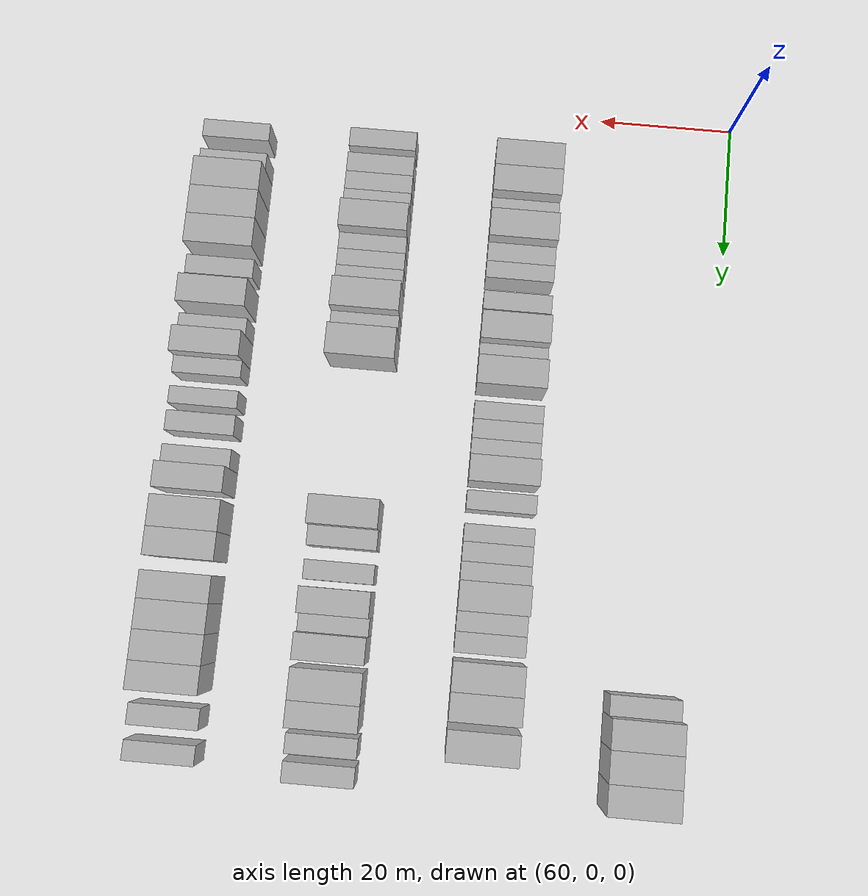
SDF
<sdf version="1.6">
 <world name="default">
  <model name="building_510">
   <static>1</static>
   <pose>69.0000 87.7155 0 0.000000 0.000000 0.000000</pose>
   <link name="link">
    <pose>0 0 3.00 0 0 0</pose>
    <collision name="collision"><geometry><box><size>10.0000 2.8923 6.0000</size></box></geometry></collision>
    <visual name="visual">
     <cast_shadows>0</cast_shadows>
     <geometry><box><size>10.0000 2.8923 6.0000</size></box></geometry>
     <material>
      <script>
       <uri>model://HANNAS_wall/materials/scripts</uri>
       <uri>model://HANNAS_wall/materials/textures</uri>
       <name>vrc/HANNAS_wall</name>
      </script>
     </material>
    </visual>
   </link>
  </model>
  <model name="building_511">
   <static>1</static>
   <pose>69.0000 91.2307 0 0.000000 0.000000 0.000000</pose>
   <link name="link">
    <pose>0 0 4.50 0 0 0</pose>
    <collision name="collision"><geometry><box><size>10.0000 4.1381 9.0000</size></box></geometry></collision>
    <visual name="visual">
     <cast_shadows>0</cast_shadows>
     <geometry><box><size>10.0000 4.1381 9.0000</size></box></geometry>
     <material>
      <script>
       <uri>model://HANNAS_wall/materials/scripts</uri>
       <uri>model://HANNAS_wall/materials/textures</uri>
       <name>vrc/HANNAS_wall</name>
      </script>
     </material>
    </visual>
   </link>
  </model>
  <model name="building_512">
   <static>1</static>
   <pose>69.0000 95.4984 0 0.000000 0.000000 0.000000</pose>
   <link name="link">
    <pose>0 0 4.50 0 0 0</pose>
    <collision name="collision"><geometry><box><size>10.0000 4.3973 9.0000</size></box></geometry></collision>
    <visual name="visual">
     <cast_shadows>0</cast_shadows>
     <geometry><box><size>10.0000 4.3973 9.0000</size></box></geometry>
     <material>
      <script>
       <uri>model://HANNAS_wall/materials/scripts</uri>
       <uri>model://HANNAS_wall/materials/textures</uri>
       <name>vrc/HANNAS_wall</name>
      </script>
     </material>
    </visual>
   </link>
  </model>
  <model name="building_513">
   <static>1</static>
   <pose>69.0000 99.8009 0 0.000000 0.000000 0.000000</pose>
   <link name="link">
    <pose>0 0 4.50 0 0 0</pose>
    <collision name="collision"><geometry><box><size>10.0000 4.2077 9.0000</size></box></geometry></collision>
    <visual name="visual">
     <cast_shadows>0</cast_shadows>
     <geometry><box><size>10.0000 4.2077 9.0000</size></box></geometry>
     <material>
      <script>
       <uri>model://HANNAS_wall/materials/scripts</uri>
       <uri>model://HANNAS_wall/materials/textures</uri>
       <name>vrc/HANNAS_wall</name>
      </script>
     </material>
    </visual>
   </link>
  </model>
  <model name="building_676">
   <static>1</static>
   <pose>91.0000 10.2411 0 0.000000 0.000000 0.000000</pose>
   <link name="link">
    <pose>0 0 4.50 0 0 0</pose>
    <collision name="collision"><geometry><box><size>10.0000 3.9583 9.0000</size></box></geometry></collision>
    <visual name="visual">
     <cast_shadows>0</cast_shadows>
     <geometry><box><size>10.0000 3.9583 9.0000</size></box></geometry>
     <material>
      <script>
       <uri>model://HANNAS_wall/materials/scripts</uri>
       <uri>model://HANNAS_wall/materials/textures</uri>
       <name>vrc/HANNAS_wall</name>
      </script>
     </material>
    </visual>
   </link>
  </model>
  <model name="building_677">
   <static>1</static>
   <pose>91.0000 14.2060 0 0.000000 0.000000 0.000000</pose>
   <link name="link">
    <pose>0 0 4.50 0 0 0</pose>
    <collision name="collision"><geometry><box><size>10.0000 3.9715 9.0000</size></box></geometry></collision>
    <visual name="visual">
     <cast_shadows>0</cast_shadows>
     <geometry><box><size>10.0000 3.9715 9.0000</size></box></geometry>
     <material>
      <script>
       <uri>model://HANNAS_wall/materials/scripts</uri>
       <uri>model://HANNAS_wall/materials/textures</uri>
       <name>vrc/HANNAS_wall</name>
      </script>
     </material>
    </visual>
   </link>
  </model>
  <model name="building_678">
   <static>1</static>
   <pose>91.0000 17.5543 0 0.000000 0.000000 0.000000</pose>
   <link name="link">
    <pose>0 0 3.00 0 0 0</pose>
    <collision name="collision"><geometry><box><size>10.0000 2.7252 6.0000</size></box></geometry></collision>
    <visual name="visual">
     <cast_shadows>0</cast_shadows>
     <geometry><box><size>10.0000 2.7252 6.0000</size></box></geometry>
     <material>
      <script>
       <uri>model://HANNAS_wall/materials/scripts</uri>
       <uri>model://HANNAS_wall/materials/textures</uri>
       <name>vrc/HANNAS_wall</name>
      </script>
     </material>
    </visual>
   </link>
  </model>
  <model name="building_679">
   <static>1</static>
   <pose>91.0000 21.0006 0 0.000000 0.000000 0.000000</pose>
   <link name="link">
    <pose>0 0 4.50 0 0 0</pose>
    <collision name="collision"><geometry><box><size>10.0000 4.1676 9.0000</size></box></geometry></collision>
    <visual name="visual">
     <cast_shadows>0</cast_shadows>
     <geometry><box><size>10.0000 4.1676 9.0000</size></box></geometry>
     <material>
      <script>
       <uri>model://HANNAS_wall/materials/scripts</uri>
       <uri>model://HANNAS_wall/materials/textures</uri>
       <name>vrc/HANNAS_wall</name>
      </script>
     </material>
    </visual>
   </link>
  </model>
  <model name="building_680">
   <static>1</static>
   <pose>91.0000 24.4971 0 0.000000 0.000000 0.000000</pose>
   <link name="link">
    <pose>0 0 3.00 0 0 0</pose>
    <collision name="collision"><geometry><box><size>10.0000 2.8254 6.0000</size></box></geometry></collision>
    <visual name="visual">
     <cast_shadows>0</cast_shadows>
     <geometry><box><size>10.0000 2.8254 6.0000</size></box></geometry>
     <material>
      <script>
       <uri>model://HANNAS_wall/materials/scripts</uri>
       <uri>model://HANNAS_wall/materials/textures</uri>
       <name>vrc/HANNAS_wall</name>
      </script>
     </material>
    </visual>
   </link>
  </model>
  <model name="building_681">
   <static>1</static>
   <pose>91.0000 27.1768 0 0.000000 0.000000 0.000000</pose>
   <link name="link">
    <pose>0 0 3.00 0 0 0</pose>
    <collision name="collision"><geometry><box><size>10.0000 2.5339 6.0000</size></box></geometry></collision>
    <visual name="visual">
     <cast_shadows>0</cast_shadows>
     <geometry><box><size>10.0000 2.5339 6.0000</size></box></geometry>
     <material>
      <script>
       <uri>model://HANNAS_wall/materials/scripts</uri>
       <uri>model://HANNAS_wall/materials/textures</uri>
       <name>vrc/HANNAS_wall</name>
      </script>
     </material>
    </visual>
   </link>
  </model>
  <model name="building_682">
   <static>1</static>
   <pose>91.0000 31.8355 0 0.000000 0.000000 0.000000</pose>
   <link name="link">
    <pose>0 0 3.00 0 0 0</pose>
    <collision name="collision"><geometry><box><size>10.0000 2.7835 6.0000</size></box></geometry></collision>
    <visual name="visual">
     <cast_shadows>0</cast_shadows>
     <geometry><box><size>10.0000 2.7835 6.0000</size></box></geometry>
     <material>
      <script>
       <uri>model://HANNAS_wall/materials/scripts</uri>
       <uri>model://HANNAS_wall/materials/textures</uri>
       <name>vrc/HANNAS_wall</name>
      </script>
     </material>
    </visual>
   </link>
  </model>
  <model name="building_683">
   <static>1</static>
   <pose>91.0000 36.2759 0 0.000000 0.000000 0.000000</pose>
   <link name="link">
    <pose>0 0 4.50 0 0 0</pose>
    <collision name="collision"><geometry><box><size>10.0000 4.0973 9.0000</size></box></geometry></collision>
    <visual name="visual">
     <cast_shadows>0</cast_shadows>
     <geometry><box><size>10.0000 4.0973 9.0000</size></box></geometry>
     <material>
      <script>
       <uri>model://HANNAS_wall/materials/scripts</uri>
       <uri>model://HANNAS_wall/materials/textures</uri>
       <name>vrc/HANNAS_wall</name>
      </script>
     </material>
    </visual>
   </link>
  </model>
  <model name="building_684">
   <static>1</static>
   <pose>91.0000 39.5255 0 0.000000 0.000000 0.000000</pose>
   <link name="link">
    <pose>0 0 3.00 0 0 0</pose>
    <collision name="collision"><geometry><box><size>10.0000 2.4019 6.0000</size></box></geometry></collision>
    <visual name="visual">
     <cast_shadows>0</cast_shadows>
     <geometry><box><size>10.0000 2.4019 6.0000</size></box></geometry>
     <material>
      <script>
       <uri>model://HANNAS_wall/materials/scripts</uri>
       <uri>model://HANNAS_wall/materials/textures</uri>
       <name>vrc/HANNAS_wall</name>
      </script>
     </material>
    </visual>
   </link>
  </model>
  <model name="building_685">
   <static>1</static>
   <pose>91.0000 42.8155 0 0.000000 0.000000 0.000000</pose>
   <link name="link">
    <pose>0 0 4.50 0 0 0</pose>
    <collision name="collision"><geometry><box><size>10.0000 4.1782 9.0000</size></box></geometry></collision>
    <visual name="visual">
     <cast_shadows>0</cast_shadows>
     <geometry><box><size>10.0000 4.1782 9.0000</size></box></geometry>
     <material>
      <script>
       <uri>model://HANNAS_wall/materials/scripts</uri>
       <uri>model://HANNAS_wall/materials/textures</uri>
       <name>vrc/HANNAS_wall</name>
      </script>
     </material>
    </visual>
   </link>
  </model>
  <model name="building_686">
   <static>1</static>
   <pose>91.0000 48.2019 0 0.000000 0.000000 0.000000</pose>
   <link name="link">
    <pose>0 0 3.00 0 0 0</pose>
    <collision name="collision"><geometry><box><size>10.0000 2.5945 6.0000</size></box></geometry></collision>
    <visual name="visual">
     <cast_shadows>0</cast_shadows>
     <geometry><box><size>10.0000 2.5945 6.0000</size></box></geometry>
     <material>
      <script>
       <uri>model://HANNAS_wall/materials/scripts</uri>
       <uri>model://HANNAS_wall/materials/textures</uri>
       <name>vrc/HANNAS_wall</name>
      </script>
     </material>
    </visual>
   </link>
  </model>
  <model name="building_687">
   <static>1</static>
   <pose>91.0000 50.9073 0 0.000000 0.000000 0.000000</pose>
   <link name="link">
    <pose>0 0 3.00 0 0 0</pose>
    <collision name="collision"><geometry><box><size>10.0000 2.8163 6.0000</size></box></geometry></collision>
    <visual name="visual">
     <cast_shadows>0</cast_shadows>
     <geometry><box><size>10.0000 2.8163 6.0000</size></box></geometry>
     <material>
      <script>
       <uri>model://HANNAS_wall/materials/scripts</uri>
       <uri>model://HANNAS_wall/materials/textures</uri>
       <name>vrc/HANNAS_wall</name>
      </script>
     </material>
    </visual>
   </link>
  </model>
  <model name="building_688">
   <static>1</static>
   <pose>91.0000 53.6687 0 0.000000 0.000000 0.000000</pose>
   <link name="link">
    <pose>0 0 3.00 0 0 0</pose>
    <collision name="collision"><geometry><box><size>10.0000 2.7065 6.0000</size></box></geometry></collision>
    <visual name="visual">
     <cast_shadows>0</cast_shadows>
     <geometry><box><size>10.0000 2.7065 6.0000</size></box></geometry>
     <material>
      <script>
       <uri>model://HANNAS_wall/materials/scripts</uri>
       <uri>model://HANNAS_wall/materials/textures</uri>
       <name>vrc/HANNAS_wall</name>
      </script>
     </material>
    </visual>
   </link>
  </model>
  <model name="building_689">
   <static>1</static>
   <pose>91.0000 56.9160 0 0.000000 0.000000 0.000000</pose>
   <link name="link">
    <pose>0 0 4.50 0 0 0</pose>
    <collision name="collision"><geometry><box><size>10.0000 3.7881 9.0000</size></box></geometry></collision>
    <visual name="visual">
     <cast_shadows>0</cast_shadows>
     <geometry><box><size>10.0000 3.7881 9.0000</size></box></geometry>
     <material>
      <script>
       <uri>model://HANNAS_wall/materials/scripts</uri>
       <uri>model://HANNAS_wall/materials/textures</uri>
       <name>vrc/HANNAS_wall</name>
      </script>
     </material>
    </visual>
   </link>
  </model>
  <model name="building_690">
   <static>1</static>
   <pose>91.0000 61.1916 0 0.000000 0.000000 0.000000</pose>
   <link name="link">
    <pose>0 0 3.00 0 0 0</pose>
    <collision name="collision"><geometry><box><size>10.0000 2.7631 6.0000</size></box></geometry></collision>
    <visual name="visual">
     <cast_shadows>0</cast_shadows>
     <geometry><box><size>10.0000 2.7631 6.0000</size></box></geometry>
     <material>
      <script>
       <uri>model://HANNAS_wall/materials/scripts</uri>
       <uri>model://HANNAS_wall/materials/textures</uri>
       <name>vrc/HANNAS_wall</name>
      </script>
     </material>
    </visual>
   </link>
  </model>
  <model name="building_691">
   <static>1</static>
   <pose>91.0000 65.8334 0 0.000000 0.000000 0.000000</pose>
   <link name="link">
    <pose>0 0 3.00 0 0 0</pose>
    <collision name="collision"><geometry><box><size>10.0000 2.5204 6.0000</size></box></geometry></collision>
    <visual name="visual">
     <cast_shadows>0</cast_shadows>
     <geometry><box><size>10.0000 2.5204 6.0000</size></box></geometry>
     <material>
      <script>
       <uri>model://HANNAS_wall/materials/scripts</uri>
       <uri>model://HANNAS_wall/materials/textures</uri>
       <name>vrc/HANNAS_wall</name>
      </script>
     </material>
    </visual>
   </link>
  </model>
  <model name="building_692">
   <static>1</static>
   <pose>91.0000 68.4874 0 0.000000 0.000000 0.000000</pose>
   <link name="link">
    <pose>0 0 3.00 0 0 0</pose>
    <collision name="collision"><geometry><box><size>10.0000 2.7877 6.0000</size></box></geometry></collision>
    <visual name="visual">
     <cast_shadows>0</cast_shadows>
     <geometry><box><size>10.0000 2.7877 6.0000</size></box></geometry>
     <material>
      <script>
       <uri>model://HANNAS_wall/materials/scripts</uri>
       <uri>model://HANNAS_wall/materials/textures</uri>
       <name>vrc/HANNAS_wall</name>
      </script>
     </material>
    </visual>
   </link>
  </model>
  <model name="building_693">
   <static>1</static>
   <pose>91.0000 71.2206 0 0.000000 0.000000 0.000000</pose>
   <link name="link">
    <pose>0 0 3.00 0 0 0</pose>
    <collision name="collision"><geometry><box><size>10.0000 2.6786 6.0000</size></box></geometry></collision>
    <visual name="visual">
     <cast_shadows>0</cast_shadows>
     <geometry><box><size>10.0000 2.6786 6.0000</size></box></geometry>
     <material>
      <script>
       <uri>model://HANNAS_wall/materials/scripts</uri>
       <uri>model://HANNAS_wall/materials/textures</uri>
       <name>vrc/HANNAS_wall</name>
      </script>
     </material>
    </visual>
   </link>
  </model>
  <model name="building_694">
   <static>1</static>
   <pose>91.0000 74.6475 0 0.000000 0.000000 0.000000</pose>
   <link name="link">
    <pose>0 0 4.50 0 0 0</pose>
    <collision name="collision"><geometry><box><size>10.0000 4.1752 9.0000</size></box></geometry></collision>
    <visual name="visual">
     <cast_shadows>0</cast_shadows>
     <geometry><box><size>10.0000 4.1752 9.0000</size></box></geometry>
     <material>
      <script>
       <uri>model://HANNAS_wall/materials/scripts</uri>
       <uri>model://HANNAS_wall/materials/textures</uri>
       <name>vrc/HANNAS_wall</name>
      </script>
     </material>
    </visual>
   </link>
  </model>
  <model name="building_695">
   <static>1</static>
   <pose>91.0000 78.1696 0 0.000000 0.000000 0.000000</pose>
   <link name="link">
    <pose>0 0 3.00 0 0 0</pose>
    <collision name="collision"><geometry><box><size>10.0000 2.8690 6.0000</size></box></geometry></collision>
    <visual name="visual">
     <cast_shadows>0</cast_shadows>
     <geometry><box><size>10.0000 2.8690 6.0000</size></box></geometry>
     <material>
      <script>
       <uri>model://HANNAS_wall/materials/scripts</uri>
       <uri>model://HANNAS_wall/materials/textures</uri>
       <name>vrc/HANNAS_wall</name>
      </script>
     </material>
    </visual>
   </link>
  </model>
  <model name="building_696">
   <static>1</static>
   <pose>91.0000 81.0419 0 0.000000 0.000000 0.000000</pose>
   <link name="link">
    <pose>0 0 3.00 0 0 0</pose>
    <collision name="collision"><geometry><box><size>10.0000 2.8755 6.0000</size></box></geometry></collision>
    <visual name="visual">
     <cast_shadows>0</cast_shadows>
     <geometry><box><size>10.0000 2.8755 6.0000</size></box></geometry>
     <material>
      <script>
       <uri>model://HANNAS_wall/materials/scripts</uri>
       <uri>model://HANNAS_wall/materials/textures</uri>
       <name>vrc/HANNAS_wall</name>
      </script>
     </material>
    </visual>
   </link>
  </model>
  <model name="building_697">
   <static>1</static>
   <pose>91.0000 85.5446 0 0.000000 0.000000 0.000000</pose>
   <link name="link">
    <pose>0 0 4.50 0 0 0</pose>
    <collision name="collision"><geometry><box><size>10.0000 4.1299 9.0000</size></box></geometry></collision>
    <visual name="visual">
     <cast_shadows>0</cast_shadows>
     <geometry><box><size>10.0000 4.1299 9.0000</size></box></geometry>
     <material>
      <script>
       <uri>model://HANNAS_wall/materials/scripts</uri>
       <uri>model://HANNAS_wall/materials/textures</uri>
       <name>vrc/HANNAS_wall</name>
      </script>
     </material>
    </visual>
   </link>
  </model>
  <model name="building_698">
   <static>1</static>
   <pose>91.0000 89.5618 0 0.000000 0.000000 0.000000</pose>
   <link name="link">
    <pose>0 0 4.50 0 0 0</pose>
    <collision name="collision"><geometry><box><size>10.0000 3.9046 9.0000</size></box></geometry></collision>
    <visual name="visual">
     <cast_shadows>0</cast_shadows>
     <geometry><box><size>10.0000 3.9046 9.0000</size></box></geometry>
     <material>
      <script>
       <uri>model://HANNAS_wall/materials/scripts</uri>
       <uri>model://HANNAS_wall/materials/textures</uri>
       <name>vrc/HANNAS_wall</name>
      </script>
     </material>
    </visual>
   </link>
  </model>
  <model name="building_699">
   <static>1</static>
   <pose>91.0000 94.6501 0 0.000000 0.000000 0.000000</pose>
   <link name="link">
    <pose>0 0 4.50 0 0 0</pose>
    <collision name="collision"><geometry><box><size>10.0000 4.2721 9.0000</size></box></geometry></collision>
    <visual name="visual">
     <cast_shadows>0</cast_shadows>
     <geometry><box><size>10.0000 4.2721 9.0000</size></box></geometry>
     <material>
      <script>
       <uri>model://HANNAS_wall/materials/scripts</uri>
       <uri>model://HANNAS_wall/materials/textures</uri>
       <name>vrc/HANNAS_wall</name>
      </script>
     </material>
    </visual>
   </link>
  </model>
  <model name="building_860">
   <static>1</static>
   <pose>113.0000 8.5150 0 0.000000 0.000000 0.000000</pose>
   <link name="link">
    <pose>0 0 3.00 0 0 0</pose>
    <collision name="collision"><geometry><box><size>10.0000 2.9059 6.0000</size></box></geometry></collision>
    <visual name="visual">
     <cast_shadows>0</cast_shadows>
     <geometry><box><size>10.0000 2.9059 6.0000</size></box></geometry>
     <material>
      <script>
       <uri>model://HANNAS_wall/materials/scripts</uri>
       <uri>model://HANNAS_wall/materials/textures</uri>
       <name>vrc/HANNAS_wall</name>
      </script>
     </material>
    </visual>
   </link>
  </model>
  <model name="building_861">
   <static>1</static>
   <pose>113.0000 12.4351 0 0.000000 0.000000 0.000000</pose>
   <link name="link">
    <pose>0 0 3.00 0 0 0</pose>
    <collision name="collision"><geometry><box><size>10.0000 2.9344 6.0000</size></box></geometry></collision>
    <visual name="visual">
     <cast_shadows>0</cast_shadows>
     <geometry><box><size>10.0000 2.9344 6.0000</size></box></geometry>
     <material>
      <script>
       <uri>model://HANNAS_wall/materials/scripts</uri>
       <uri>model://HANNAS_wall/materials/textures</uri>
       <name>vrc/HANNAS_wall</name>
      </script>
     </material>
    </visual>
   </link>
  </model>
  <model name="building_862">
   <static>1</static>
   <pose>113.0000 15.2823 0 0.000000 0.000000 0.000000</pose>
   <link name="link">
    <pose>0 0 3.00 0 0 0</pose>
    <collision name="collision"><geometry><box><size>10.0000 2.7601 6.0000</size></box></geometry></collision>
    <visual name="visual">
     <cast_shadows>0</cast_shadows>
     <geometry><box><size>10.0000 2.7601 6.0000</size></box></geometry>
     <material>
      <script>
       <uri>model://HANNAS_wall/materials/scripts</uri>
       <uri>model://HANNAS_wall/materials/textures</uri>
       <name>vrc/HANNAS_wall</name>
      </script>
     </material>
    </visual>
   </link>
  </model>
  <model name="building_863">
   <static>1</static>
   <pose>113.0000 18.0183 0 0.000000 0.000000 0.000000</pose>
   <link name="link">
    <pose>0 0 3.00 0 0 0</pose>
    <collision name="collision"><geometry><box><size>10.0000 2.7119 6.0000</size></box></geometry></collision>
    <visual name="visual">
     <cast_shadows>0</cast_shadows>
     <geometry><box><size>10.0000 2.7119 6.0000</size></box></geometry>
     <material>
      <script>
       <uri>model://HANNAS_wall/materials/scripts</uri>
       <uri>model://HANNAS_wall/materials/textures</uri>
       <name>vrc/HANNAS_wall</name>
      </script>
     </material>
    </visual>
   </link>
  </model>
  <model name="building_864">
   <static>1</static>
   <pose>113.0000 21.4316 0 0.000000 0.000000 0.000000</pose>
   <link name="link">
    <pose>0 0 4.50 0 0 0</pose>
    <collision name="collision"><geometry><box><size>10.0000 4.1148 9.0000</size></box></geometry></collision>
    <visual name="visual">
     <cast_shadows>0</cast_shadows>
     <geometry><box><size>10.0000 4.1148 9.0000</size></box></geometry>
     <material>
      <script>
       <uri>model://HANNAS_wall/materials/scripts</uri>
       <uri>model://HANNAS_wall/materials/textures</uri>
       <name>vrc/HANNAS_wall</name>
      </script>
     </material>
    </visual>
   </link>
  </model>
  <model name="building_865">
   <static>1</static>
   <pose>113.0000 24.7189 0 0.000000 0.000000 0.000000</pose>
   <link name="link">
    <pose>0 0 3.00 0 0 0</pose>
    <collision name="collision"><geometry><box><size>10.0000 2.4598 6.0000</size></box></geometry></collision>
    <visual name="visual">
     <cast_shadows>0</cast_shadows>
     <geometry><box><size>10.0000 2.4598 6.0000</size></box></geometry>
     <material>
      <script>
       <uri>model://HANNAS_wall/materials/scripts</uri>
       <uri>model://HANNAS_wall/materials/textures</uri>
       <name>vrc/HANNAS_wall</name>
      </script>
     </material>
    </visual>
   </link>
  </model>
  <model name="building_866">
   <static>1</static>
   <pose>113.0000 27.2064 0 0.000000 0.000000 0.000000</pose>
   <link name="link">
    <pose>0 0 3.00 0 0 0</pose>
    <collision name="collision"><geometry><box><size>10.0000 2.5153 6.0000</size></box></geometry></collision>
    <visual name="visual">
     <cast_shadows>0</cast_shadows>
     <geometry><box><size>10.0000 2.5153 6.0000</size></box></geometry>
     <material>
      <script>
       <uri>model://HANNAS_wall/materials/scripts</uri>
       <uri>model://HANNAS_wall/materials/textures</uri>
       <name>vrc/HANNAS_wall</name>
      </script>
     </material>
    </visual>
   </link>
  </model>
  <model name="building_867">
   <static>1</static>
   <pose>113.0000 29.7611 0 0.000000 0.000000 0.000000</pose>
   <link name="link">
    <pose>0 0 3.00 0 0 0</pose>
    <collision name="collision"><geometry><box><size>10.0000 2.5939 6.0000</size></box></geometry></collision>
    <visual name="visual">
     <cast_shadows>0</cast_shadows>
     <geometry><box><size>10.0000 2.5939 6.0000</size></box></geometry>
     <material>
      <script>
       <uri>model://HANNAS_wall/materials/scripts</uri>
       <uri>model://HANNAS_wall/materials/textures</uri>
       <name>vrc/HANNAS_wall</name>
      </script>
     </material>
    </visual>
   </link>
  </model>
  <model name="building_868">
   <static>1</static>
   <pose>113.0000 33.2514 0 0.000000 0.000000 0.000000</pose>
   <link name="link">
    <pose>0 0 4.50 0 0 0</pose>
    <collision name="collision"><geometry><box><size>10.0000 4.3868 9.0000</size></box></geometry></collision>
    <visual name="visual">
     <cast_shadows>0</cast_shadows>
     <geometry><box><size>10.0000 4.3868 9.0000</size></box></geometry>
     <material>
      <script>
       <uri>model://HANNAS_wall/materials/scripts</uri>
       <uri>model://HANNAS_wall/materials/textures</uri>
       <name>vrc/HANNAS_wall</name>
      </script>
     </material>
    </visual>
   </link>
  </model>
  <model name="building_869">
   <static>1</static>
   <pose>113.0000 36.7119 0 0.000000 0.000000 0.000000</pose>
   <link name="link">
    <pose>0 0 3.00 0 0 0</pose>
    <collision name="collision"><geometry><box><size>10.0000 2.5342 6.0000</size></box></geometry></collision>
    <visual name="visual">
     <cast_shadows>0</cast_shadows>
     <geometry><box><size>10.0000 2.5342 6.0000</size></box></geometry>
     <material>
      <script>
       <uri>model://HANNAS_wall/materials/scripts</uri>
       <uri>model://HANNAS_wall/materials/textures</uri>
       <name>vrc/HANNAS_wall</name>
      </script>
     </material>
    </visual>
   </link>
  </model>
  <model name="building_870">
   <static>1</static>
   <pose>113.0000 40.2287 0 0.000000 0.000000 0.000000</pose>
   <link name="link">
    <pose>0 0 4.50 0 0 0</pose>
    <collision name="collision"><geometry><box><size>10.0000 4.4993 9.0000</size></box></geometry></collision>
    <visual name="visual">
     <cast_shadows>0</cast_shadows>
     <geometry><box><size>10.0000 4.4993 9.0000</size></box></geometry>
     <material>
      <script>
       <uri>model://HANNAS_wall/materials/scripts</uri>
       <uri>model://HANNAS_wall/materials/textures</uri>
       <name>vrc/HANNAS_wall</name>
      </script>
     </material>
    </visual>
   </link>
  </model>
  <model name="building_871">
   <static>1</static>
   <pose>113.0000 64.6146 0 0.000000 0.000000 0.000000</pose>
   <link name="link">
    <pose>0 0 4.50 0 0 0</pose>
    <collision name="collision"><geometry><box><size>10.0000 4.0909 9.0000</size></box></geometry></collision>
    <visual name="visual">
     <cast_shadows>0</cast_shadows>
     <geometry><box><size>10.0000 4.0909 9.0000</size></box></geometry>
     <material>
      <script>
       <uri>model://HANNAS_wall/materials/scripts</uri>
       <uri>model://HANNAS_wall/materials/textures</uri>
       <name>vrc/HANNAS_wall</name>
      </script>
     </material>
    </visual>
   </link>
  </model>
  <model name="building_872">
   <static>1</static>
   <pose>113.0000 68.1058 0 0.000000 0.000000 0.000000</pose>
   <link name="link">
    <pose>0 0 3.00 0 0 0</pose>
    <collision name="collision"><geometry><box><size>10.0000 2.8913 6.0000</size></box></geometry></collision>
    <visual name="visual">
     <cast_shadows>0</cast_shadows>
     <geometry><box><size>10.0000 2.8913 6.0000</size></box></geometry>
     <material>
      <script>
       <uri>model://HANNAS_wall/materials/scripts</uri>
       <uri>model://HANNAS_wall/materials/textures</uri>
       <name>vrc/HANNAS_wall</name>
      </script>
     </material>
    </visual>
   </link>
  </model>
  <model name="building_873">
   <static>1</static>
   <pose>113.0000 72.9325 0 0.000000 0.000000 0.000000</pose>
   <link name="link">
    <pose>0 0 3.00 0 0 0</pose>
    <collision name="collision"><geometry><box><size>10.0000 2.7622 6.0000</size></box></geometry></collision>
    <visual name="visual">
     <cast_shadows>0</cast_shadows>
     <geometry><box><size>10.0000 2.7622 6.0000</size></box></geometry>
     <material>
      <script>
       <uri>model://HANNAS_wall/materials/scripts</uri>
       <uri>model://HANNAS_wall/materials/textures</uri>
       <name>vrc/HANNAS_wall</name>
      </script>
     </material>
    </visual>
   </link>
  </model>
  <model name="building_874">
   <static>1</static>
   <pose>113.0000 77.1351 0 0.000000 0.000000 0.000000</pose>
   <link name="link">
    <pose>0 0 4.50 0 0 0</pose>
    <collision name="collision"><geometry><box><size>10.0000 3.6430 9.0000</size></box></geometry></collision>
    <visual name="visual">
     <cast_shadows>0</cast_shadows>
     <geometry><box><size>10.0000 3.6430 9.0000</size></box></geometry>
     <material>
      <script>
       <uri>model://HANNAS_wall/materials/scripts</uri>
       <uri>model://HANNAS_wall/materials/textures</uri>
       <name>vrc/HANNAS_wall</name>
      </script>
     </material>
    </visual>
   </link>
  </model>
  <model name="building_875">
   <static>1</static>
   <pose>113.0000 80.2495 0 0.000000 0.000000 0.000000</pose>
   <link name="link">
    <pose>0 0 3.00 0 0 0</pose>
    <collision name="collision"><geometry><box><size>10.0000 2.5858 6.0000</size></box></geometry></collision>
    <visual name="visual">
     <cast_shadows>0</cast_shadows>
     <geometry><box><size>10.0000 2.5858 6.0000</size></box></geometry>
     <material>
      <script>
       <uri>model://HANNAS_wall/materials/scripts</uri>
       <uri>model://HANNAS_wall/materials/textures</uri>
       <name>vrc/HANNAS_wall</name>
      </script>
     </material>
    </visual>
   </link>
  </model>
  <model name="building_876">
   <static>1</static>
   <pose>113.0000 83.3851 0 0.000000 0.000000 0.000000</pose>
   <link name="link">
    <pose>0 0 4.50 0 0 0</pose>
    <collision name="collision"><geometry><box><size>10.0000 3.6854 9.0000</size></box></geometry></collision>
    <visual name="visual">
     <cast_shadows>0</cast_shadows>
     <geometry><box><size>10.0000 3.6854 9.0000</size></box></geometry>
     <material>
      <script>
       <uri>model://HANNAS_wall/materials/scripts</uri>
       <uri>model://HANNAS_wall/materials/textures</uri>
       <name>vrc/HANNAS_wall</name>
      </script>
     </material>
    </visual>
   </link>
  </model>
  <model name="building_877">
   <static>1</static>
   <pose>113.0000 88.4254 0 0.000000 0.000000 0.000000</pose>
   <link name="link">
    <pose>0 0 4.50 0 0 0</pose>
    <collision name="collision"><geometry><box><size>10.0000 4.3952 9.0000</size></box></geometry></collision>
    <visual name="visual">
     <cast_shadows>0</cast_shadows>
     <geometry><box><size>10.0000 4.3952 9.0000</size></box></geometry>
     <material>
      <script>
       <uri>model://HANNAS_wall/materials/scripts</uri>
       <uri>model://HANNAS_wall/materials/textures</uri>
       <name>vrc/HANNAS_wall</name>
      </script>
     </material>
    </visual>
   </link>
  </model>
  <model name="building_878">
   <static>1</static>
   <pose>113.0000 92.4375 0 0.000000 0.000000 0.000000</pose>
   <link name="link">
    <pose>0 0 4.50 0 0 0</pose>
    <collision name="collision"><geometry><box><size>10.0000 3.6290 9.0000</size></box></geometry></collision>
    <visual name="visual">
     <cast_shadows>0</cast_shadows>
     <geometry><box><size>10.0000 3.6290 9.0000</size></box></geometry>
     <material>
      <script>
       <uri>model://HANNAS_wall/materials/scripts</uri>
       <uri>model://HANNAS_wall/materials/textures</uri>
       <name>vrc/HANNAS_wall</name>
      </script>
     </material>
    </visual>
   </link>
  </model>
  <model name="building_879">
   <static>1</static>
   <pose>113.0000 96.6445 0 0.000000 0.000000 0.000000</pose>
   <link name="link">
    <pose>0 0 3.00 0 0 0</pose>
    <collision name="collision"><geometry><box><size>10.0000 2.7849 6.0000</size></box></geometry></collision>
    <visual name="visual">
     <cast_shadows>0</cast_shadows>
     <geometry><box><size>10.0000 2.7849 6.0000</size></box></geometry>
     <material>
      <script>
       <uri>model://HANNAS_wall/materials/scripts</uri>
       <uri>model://HANNAS_wall/materials/textures</uri>
       <name>vrc/HANNAS_wall</name>
      </script>
     </material>
    </visual>
   </link>
  </model>
  <model name="building_880">
   <static>1</static>
   <pose>113.0000 100.4597 0 0.000000 0.000000 0.000000</pose>
   <link name="link">
    <pose>0 0 3.00 0 0 0</pose>
    <collision name="collision"><geometry><box><size>10.0000 2.8455 6.0000</size></box></geometry></collision>
    <visual name="visual">
     <cast_shadows>0</cast_shadows>
     <geometry><box><size>10.0000 2.8455 6.0000</size></box></geometry>
     <material>
      <script>
       <uri>model://HANNAS_wall/materials/scripts</uri>
       <uri>model://HANNAS_wall/materials/textures</uri>
       <name>vrc/HANNAS_wall</name>
      </script>
     </material>
    </visual>
   </link>
  </model>
  <model name="building_1054">
   <static>1</static>
   <pose>135.0000 8.9986 0 0.000000 0.000000 0.000000</pose>
   <link name="link">
    <pose>0 0 3.00 0 0 0</pose>
    <collision name="collision"><geometry><box><size>10.0000 2.6758 6.0000</size></box></geometry></collision>
    <visual name="visual">
     <cast_shadows>0</cast_shadows>
     <geometry><box><size>10.0000 2.6758 6.0000</size></box></geometry>
     <material>
      <script>
       <uri>model://HANNAS_wall/materials/scripts</uri>
       <uri>model://HANNAS_wall/materials/textures</uri>
       <name>vrc/HANNAS_wall</name>
      </script>
     </material>
    </visual>
   </link>
  </model>
  <model name="building_1055">
   <static>1</static>
   <pose>135.0000 13.5949 0 0.000000 0.000000 0.000000</pose>
   <link name="link">
    <pose>0 0 3.00 0 0 0</pose>
    <collision name="collision"><geometry><box><size>10.0000 2.5168 6.0000</size></box></geometry></collision>
    <visual name="visual">
     <cast_shadows>0</cast_shadows>
     <geometry><box><size>10.0000 2.5168 6.0000</size></box></geometry>
     <material>
      <script>
       <uri>model://HANNAS_wall/materials/scripts</uri>
       <uri>model://HANNAS_wall/materials/textures</uri>
       <name>vrc/HANNAS_wall</name>
      </script>
     </material>
    </visual>
   </link>
  </model>
  <model name="building_1056">
   <static>1</static>
   <pose>135.0000 17.0552 0 0.000000 0.000000 0.000000</pose>
   <link name="link">
    <pose>0 0 4.50 0 0 0</pose>
    <collision name="collision"><geometry><box><size>10.0000 4.4038 9.0000</size></box></geometry></collision>
    <visual name="visual">
     <cast_shadows>0</cast_shadows>
     <geometry><box><size>10.0000 4.4038 9.0000</size></box></geometry>
     <material>
      <script>
       <uri>model://HANNAS_wall/materials/scripts</uri>
       <uri>model://HANNAS_wall/materials/textures</uri>
       <name>vrc/HANNAS_wall</name>
      </script>
     </material>
    </visual>
   </link>
  </model>
  <model name="building_1057">
   <static>1</static>
   <pose>135.0000 21.3955 0 0.000000 0.000000 0.000000</pose>
   <link name="link">
    <pose>0 0 4.50 0 0 0</pose>
    <collision name="collision"><geometry><box><size>10.0000 4.2768 9.0000</size></box></geometry></collision>
    <visual name="visual">
     <cast_shadows>0</cast_shadows>
     <geometry><box><size>10.0000 4.2768 9.0000</size></box></geometry>
     <material>
      <script>
       <uri>model://HANNAS_wall/materials/scripts</uri>
       <uri>model://HANNAS_wall/materials/textures</uri>
       <name>vrc/HANNAS_wall</name>
      </script>
     </material>
    </visual>
   </link>
  </model>
  <model name="building_1058">
   <static>1</static>
   <pose>135.0000 25.6774 0 0.000000 0.000000 0.000000</pose>
   <link name="link">
    <pose>0 0 4.50 0 0 0</pose>
    <collision name="collision"><geometry><box><size>10.0000 4.2869 9.0000</size></box></geometry></collision>
    <visual name="visual">
     <cast_shadows>0</cast_shadows>
     <geometry><box><size>10.0000 4.2869 9.0000</size></box></geometry>
     <material>
      <script>
       <uri>model://HANNAS_wall/materials/scripts</uri>
       <uri>model://HANNAS_wall/materials/textures</uri>
       <name>vrc/HANNAS_wall</name>
      </script>
     </material>
    </visual>
   </link>
  </model>
  <model name="building_1059">
   <static>1</static>
   <pose>135.0000 30.2268 0 0.000000 0.000000 0.000000</pose>
   <link name="link">
    <pose>0 0 3.00 0 0 0</pose>
    <collision name="collision"><geometry><box><size>10.0000 2.8121 6.0000</size></box></geometry></collision>
    <visual name="visual">
     <cast_shadows>0</cast_shadows>
     <geometry><box><size>10.0000 2.8121 6.0000</size></box></geometry>
     <material>
      <script>
       <uri>model://HANNAS_wall/materials/scripts</uri>
       <uri>model://HANNAS_wall/materials/textures</uri>
       <name>vrc/HANNAS_wall</name>
      </script>
     </material>
    </visual>
   </link>
  </model>
  <model name="building_1060">
   <static>1</static>
   <pose>135.0000 34.6781 0 0.000000 0.000000 0.000000</pose>
   <link name="link">
    <pose>0 0 4.50 0 0 0</pose>
    <collision name="collision"><geometry><box><size>10.0000 4.0905 9.0000</size></box></geometry></collision>
    <visual name="visual">
     <cast_shadows>0</cast_shadows>
     <geometry><box><size>10.0000 4.0905 9.0000</size></box></geometry>
     <material>
      <script>
       <uri>model://HANNAS_wall/materials/scripts</uri>
       <uri>model://HANNAS_wall/materials/textures</uri>
       <name>vrc/HANNAS_wall</name>
      </script>
     </material>
    </visual>
   </link>
  </model>
  <model name="building_1061">
   <static>1</static>
   <pose>135.0000 39.0039 0 0.000000 0.000000 0.000000</pose>
   <link name="link">
    <pose>0 0 3.00 0 0 0</pose>
    <collision name="collision"><geometry><box><size>10.0000 2.5610 6.0000</size></box></geometry></collision>
    <visual name="visual">
     <cast_shadows>0</cast_shadows>
     <geometry><box><size>10.0000 2.5610 6.0000</size></box></geometry>
     <material>
      <script>
       <uri>model://HANNAS_wall/materials/scripts</uri>
       <uri>model://HANNAS_wall/materials/textures</uri>
       <name>vrc/HANNAS_wall</name>
      </script>
     </material>
    </visual>
   </link>
  </model>
  <model name="building_1062">
   <static>1</static>
   <pose>135.0000 42.1614 0 0.000000 0.000000 0.000000</pose>
   <link name="link">
    <pose>0 0 4.50 0 0 0</pose>
    <collision name="collision"><geometry><box><size>10.0000 3.7540 9.0000</size></box></geometry></collision>
    <visual name="visual">
     <cast_shadows>0</cast_shadows>
     <geometry><box><size>10.0000 3.7540 9.0000</size></box></geometry>
     <material>
      <script>
       <uri>model://HANNAS_wall/materials/scripts</uri>
       <uri>model://HANNAS_wall/materials/textures</uri>
       <name>vrc/HANNAS_wall</name>
      </script>
     </material>
    </visual>
   </link>
  </model>
  <model name="building_1063">
   <static>1</static>
   <pose>135.0000 45.2942 0 0.000000 0.000000 0.000000</pose>
   <link name="link">
    <pose>0 0 3.00 0 0 0</pose>
    <collision name="collision"><geometry><box><size>10.0000 2.5116 6.0000</size></box></geometry></collision>
    <visual name="visual">
     <cast_shadows>0</cast_shadows>
     <geometry><box><size>10.0000 2.5116 6.0000</size></box></geometry>
     <material>
      <script>
       <uri>model://HANNAS_wall/materials/scripts</uri>
       <uri>model://HANNAS_wall/materials/textures</uri>
       <name>vrc/HANNAS_wall</name>
      </script>
     </material>
    </visual>
   </link>
  </model>
  <model name="building_1064">
   <static>1</static>
   <pose>135.0000 49.8230 0 0.000000 0.000000 0.000000</pose>
   <link name="link">
    <pose>0 0 3.00 0 0 0</pose>
    <collision name="collision"><geometry><box><size>10.0000 2.5460 6.0000</size></box></geometry></collision>
    <visual name="visual">
     <cast_shadows>0</cast_shadows>
     <geometry><box><size>10.0000 2.5460 6.0000</size></box></geometry>
     <material>
      <script>
       <uri>model://HANNAS_wall/materials/scripts</uri>
       <uri>model://HANNAS_wall/materials/textures</uri>
       <name>vrc/HANNAS_wall</name>
      </script>
     </material>
    </visual>
   </link>
  </model>
  <model name="building_1065">
   <static>1</static>
   <pose>135.0000 53.5735 0 0.000000 0.000000 0.000000</pose>
   <link name="link">
    <pose>0 0 3.00 0 0 0</pose>
    <collision name="collision"><geometry><box><size>10.0000 2.9548 6.0000</size></box></geometry></collision>
    <visual name="visual">
     <cast_shadows>0</cast_shadows>
     <geometry><box><size>10.0000 2.9548 6.0000</size></box></geometry>
     <material>
      <script>
       <uri>model://HANNAS_wall/materials/scripts</uri>
       <uri>model://HANNAS_wall/materials/textures</uri>
       <name>vrc/HANNAS_wall</name>
      </script>
     </material>
    </visual>
   </link>
  </model>
  <model name="building_1066">
   <static>1</static>
   <pose>135.0000 58.4430 0 0.000000 0.000000 0.000000</pose>
   <link name="link">
    <pose>0 0 3.00 0 0 0</pose>
    <collision name="collision"><geometry><box><size>10.0000 2.7843 6.0000</size></box></geometry></collision>
    <visual name="visual">
     <cast_shadows>0</cast_shadows>
     <geometry><box><size>10.0000 2.7843 6.0000</size></box></geometry>
     <material>
      <script>
       <uri>model://HANNAS_wall/materials/scripts</uri>
       <uri>model://HANNAS_wall/materials/textures</uri>
       <name>vrc/HANNAS_wall</name>
      </script>
     </material>
    </visual>
   </link>
  </model>
  <model name="building_1067">
   <static>1</static>
   <pose>135.0000 61.6769 0 0.000000 0.000000 0.000000</pose>
   <link name="link">
    <pose>0 0 4.50 0 0 0</pose>
    <collision name="collision"><geometry><box><size>10.0000 3.6834 9.0000</size></box></geometry></collision>
    <visual name="visual">
     <cast_shadows>0</cast_shadows>
     <geometry><box><size>10.0000 3.6834 9.0000</size></box></geometry>
     <material>
      <script>
       <uri>model://HANNAS_wall/materials/scripts</uri>
       <uri>model://HANNAS_wall/materials/textures</uri>
       <name>vrc/HANNAS_wall</name>
      </script>
     </material>
    </visual>
   </link>
  </model>
  <model name="building_1068">
   <static>1</static>
   <pose>135.0000 66.7494 0 0.000000 0.000000 0.000000</pose>
   <link name="link">
    <pose>0 0 4.50 0 0 0</pose>
    <collision name="collision"><geometry><box><size>10.0000 4.4617 9.0000</size></box></geometry></collision>
    <visual name="visual">
     <cast_shadows>0</cast_shadows>
     <geometry><box><size>10.0000 4.4617 9.0000</size></box></geometry>
     <material>
      <script>
       <uri>model://HANNAS_wall/materials/scripts</uri>
       <uri>model://HANNAS_wall/materials/textures</uri>
       <name>vrc/HANNAS_wall</name>
      </script>
     </material>
    </visual>
   </link>
  </model>
  <model name="building_1069">
   <static>1</static>
   <pose>135.0000 70.9932 0 0.000000 0.000000 0.000000</pose>
   <link name="link">
    <pose>0 0 4.50 0 0 0</pose>
    <collision name="collision"><geometry><box><size>10.0000 4.0258 9.0000</size></box></geometry></collision>
    <visual name="visual">
     <cast_shadows>0</cast_shadows>
     <geometry><box><size>10.0000 4.0258 9.0000</size></box></geometry>
     <material>
      <script>
       <uri>model://HANNAS_wall/materials/scripts</uri>
       <uri>model://HANNAS_wall/materials/textures</uri>
       <name>vrc/HANNAS_wall</name>
      </script>
     </material>
    </visual>
   </link>
  </model>
  <model name="building_1070">
   <static>1</static>
   <pose>135.0000 76.9416 0 0.000000 0.000000 0.000000</pose>
   <link name="link">
    <pose>0 0 4.50 0 0 0</pose>
    <collision name="collision"><geometry><box><size>10.0000 3.8711 9.0000</size></box></geometry></collision>
    <visual name="visual">
     <cast_shadows>0</cast_shadows>
     <geometry><box><size>10.0000 3.8711 9.0000</size></box></geometry>
     <material>
      <script>
       <uri>model://HANNAS_wall/materials/scripts</uri>
       <uri>model://HANNAS_wall/materials/textures</uri>
       <name>vrc/HANNAS_wall</name>
      </script>
     </material>
    </visual>
   </link>
  </model>
  <model name="building_1071">
   <static>1</static>
   <pose>135.0000 80.9547 0 0.000000 0.000000 0.000000</pose>
   <link name="link">
    <pose>0 0 4.50 0 0 0</pose>
    <collision name="collision"><geometry><box><size>10.0000 4.1551 9.0000</size></box></geometry></collision>
    <visual name="visual">
     <cast_shadows>0</cast_shadows>
     <geometry><box><size>10.0000 4.1551 9.0000</size></box></geometry>
     <material>
      <script>
       <uri>model://HANNAS_wall/materials/scripts</uri>
       <uri>model://HANNAS_wall/materials/textures</uri>
       <name>vrc/HANNAS_wall</name>
      </script>
     </material>
    </visual>
   </link>
  </model>
  <model name="building_1072">
   <static>1</static>
   <pose>135.0000 85.1202 0 0.000000 0.000000 0.000000</pose>
   <link name="link">
    <pose>0 0 4.50 0 0 0</pose>
    <collision name="collision"><geometry><box><size>10.0000 4.1759 9.0000</size></box></geometry></collision>
    <visual name="visual">
     <cast_shadows>0</cast_shadows>
     <geometry><box><size>10.0000 4.1759 9.0000</size></box></geometry>
     <material>
      <script>
       <uri>model://HANNAS_wall/materials/scripts</uri>
       <uri>model://HANNAS_wall/materials/textures</uri>
       <name>vrc/HANNAS_wall</name>
      </script>
     </material>
    </visual>
   </link>
  </model>
  <model name="building_1073">
   <static>1</static>
   <pose>135.0000 89.1755 0 0.000000 0.000000 0.000000</pose>
   <link name="link">
    <pose>0 0 4.50 0 0 0</pose>
    <collision name="collision"><geometry><box><size>10.0000 3.9348 9.0000</size></box></geometry></collision>
    <visual name="visual">
     <cast_shadows>0</cast_shadows>
     <geometry><box><size>10.0000 3.9348 9.0000</size></box></geometry>
     <material>
      <script>
       <uri>model://HANNAS_wall/materials/scripts</uri>
       <uri>model://HANNAS_wall/materials/textures</uri>
       <name>vrc/HANNAS_wall</name>
      </script>
     </material>
    </visual>
   </link>
  </model>
  <model name="building_1074">
   <static>1</static>
   <pose>135.0000 94.6215 0 0.000000 0.000000 0.000000</pose>
   <link name="link">
    <pose>0 0 3.00 0 0 0</pose>
    <collision name="collision"><geometry><box><size>10.0000 2.9573 6.0000</size></box></geometry></collision>
    <visual name="visual">
     <cast_shadows>0</cast_shadows>
     <geometry><box><size>10.0000 2.9573 6.0000</size></box></geometry>
     <material>
      <script>
       <uri>model://HANNAS_wall/materials/scripts</uri>
       <uri>model://HANNAS_wall/materials/textures</uri>
       <name>vrc/HANNAS_wall</name>
      </script>
     </material>
    </visual>
   </link>
  </model>
  <model name="building_1075">
   <static>1</static>
   <pose>135.0000 99.4870 0 0.000000 0.000000 0.000000</pose>
   <link name="link">
    <pose>0 0 3.00 0 0 0</pose>
    <collision name="collision"><geometry><box><size>10.0000 2.7737 6.0000</size></box></geometry></collision>
    <visual name="visual">
     <cast_shadows>0</cast_shadows>
     <geometry><box><size>10.0000 2.7737 6.0000</size></box></geometry>
     <material>
      <script>
       <uri>model://HANNAS_wall/materials/scripts</uri>
       <uri>model://HANNAS_wall/materials/textures</uri>
       <name>vrc/HANNAS_wall</name>
      </script>
     </material>
    </visual>
   </link>
  </model>
 </world>
</sdf>
